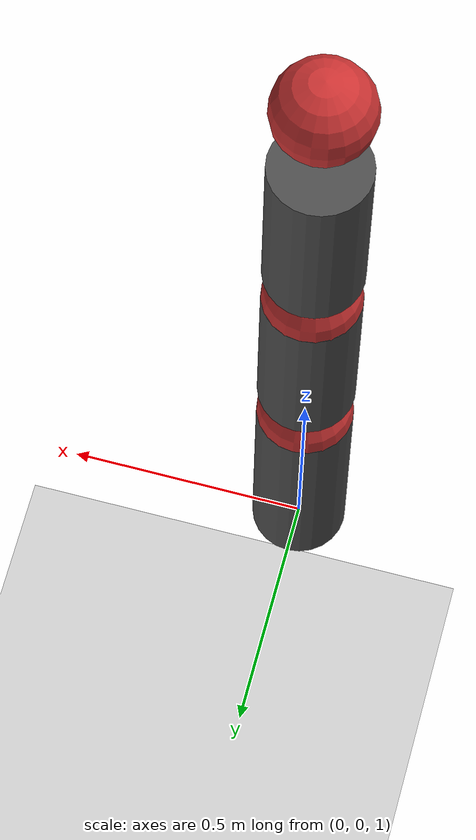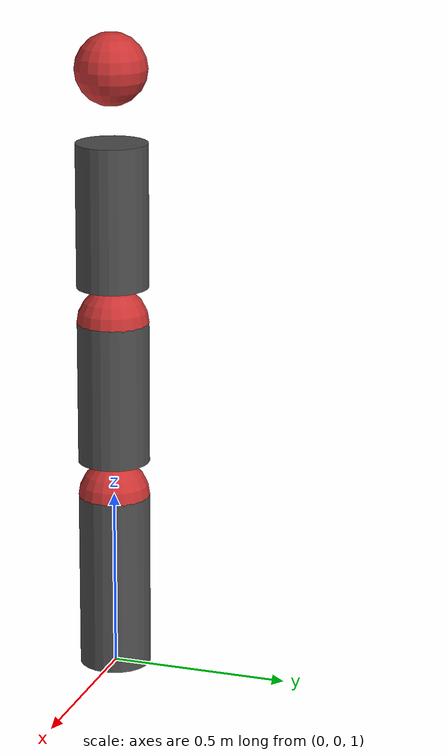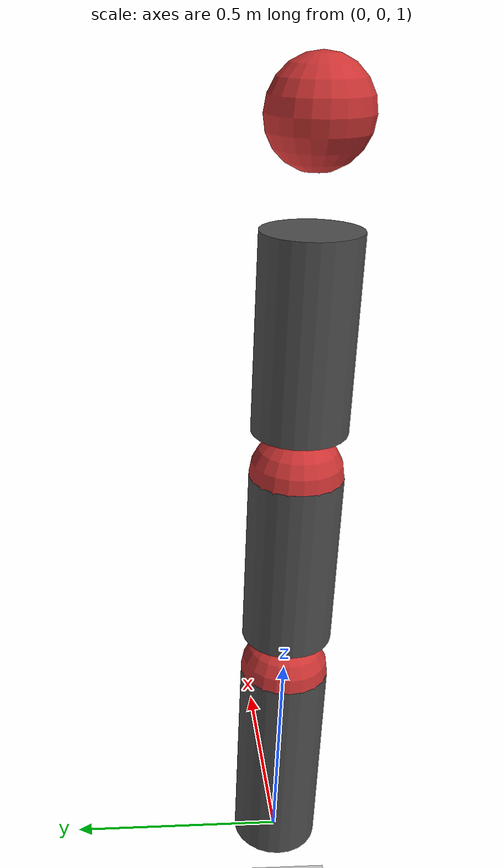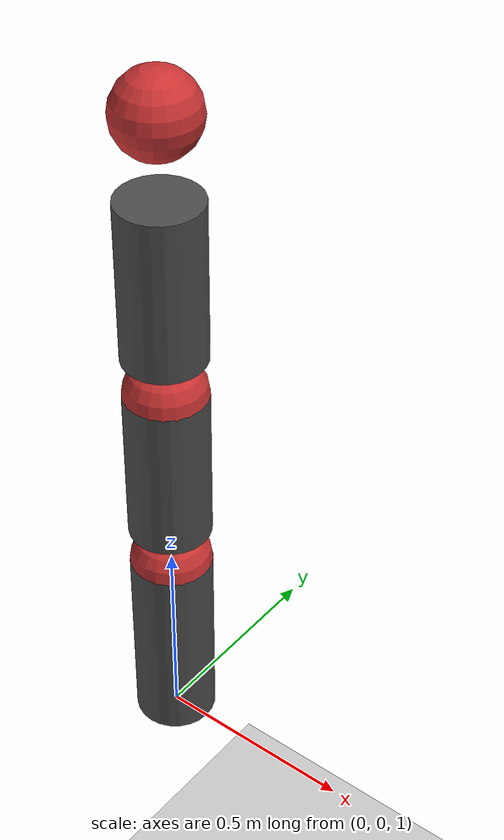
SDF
<sdf version='1.10'>
    <world name='arm_world'>
        <physics name='1ms' type='ignored'>
            <max_step_size>0.001</max_step_size>
            <real_time_factor>1</real_time_factor>
            <real_time_update_rate>1000</real_time_update_rate>
        </physics>
        <plugin name='gz::sim::systems::Physics' filename='gz-sim-physics-system' />
        <plugin name='gz::sim::systems::UserCommands' filename='gz-sim-user-commands-system' />
        <plugin name='gz::sim::systems::SceneBroadcaster' filename='gz-sim-scene-broadcaster-system' />
        <gravity>0 0 -9.8000000000000007</gravity>
        <scene>
            <ambient>0.4 0.4 0.4 1</ambient>
            <background>0.7 0.7 0.7 1</background>
        </scene>

        <!-- Ground Plane -->
        <model name='ground_plane'>
            <static>true</static>
            <link name='link'>
                <collision name='collision'>
                    <geometry>
                        <plane>
                            <normal>0 0 1</normal>
                            <size>100 100</size>
                        </plane>
                    </geometry>
                </collision>
                <visual name='visual'>
                    <geometry>
                        <plane>
                            <normal>0 0 1</normal>
                            <size>100 100</size>
                        </plane>
                    </geometry>
                    <material>
                        <ambient>0.8 0.8 0.8 1</ambient>
                    </material>
                </visual>
            </link>
        </model>

        <!-- Arm/Finger Base -->
        <model name='finger'>
            <pose>0 0 1 0 0 0</pose>

            <!-- Base Cylinder -->
            <link name='base_cylinder'>
                <visual name='visual'>
                    <geometry>
                        <cylinder>
                            <radius>0.1</radius>
                            <length>0.5</length>
                        </cylinder>
                    </geometry>
                    <material>
                        <ambient>0.3 0.3 0.3 1</ambient>
                    </material>
                </visual>
                <collision name='collision'>
                    <geometry>
                        <cylinder>
                            <radius>0.1</radius>
                            <length>0.5</length>
                        </cylinder>
                    </geometry>
                </collision>
                <pose>0 0 0.25 0 0 0</pose>
            </link>

            <!-- Base Sphere (Joint) -->
            <link name='base_joint'>
                <visual name='visual'>
                    <geometry>
                        <sphere>
                            <radius>0.1</radius>
                        </sphere>
                    </geometry>
                    <material>
                        <ambient>0.8 0.2 0.2 1</ambient>
                    </material>
                </visual>
                <collision name='collision'>
                    <geometry>
                        <sphere>
                            <radius>0.1</radius>
                        </sphere>
                    </geometry>
                </collision>
                <pose>0 0 0.5 0 0 0</pose>
            </link>

            <!-- First Joint -->

            <!-- First Finger Segment (Cylinder) -->
            <link name='finger_segment_1'>
                <visual name='visual'>
                    <geometry>
                        <cylinder>
                            <radius>0.1</radius>
                            <length>0.4</length>
                        </cylinder>
                    </geometry>
                    <material>
                        <ambient>0.3 0.3 0.3 1</ambient>
                    </material>
                </visual>
                <collision name='collision'>
                    <geometry>
                        <cylinder>
                            <radius>0.1</radius>
                            <length>0.4</length>
                        </cylinder>
                    </geometry>
                </collision>
                <pose>0 0 0.8 0 0 0</pose>
            </link>

            <!-- First Finger Joint (Knuckle) -->
            <link name='knuckle_joint'>
                <visual name='visual'>
                    <geometry>
                        <sphere>
                            <radius>0.1</radius>
                        </sphere>
                    </geometry>
                    <material>
                        <ambient>0.8 0.2 0.2 1</ambient>
                    </material>
                </visual>
                <collision name='collision'>
                    <geometry>
                        <sphere>
                            <radius>0.1</radius>
                        </sphere>
                    </geometry>
                </collision>
                <pose>0 0 1 0 0 0</pose>
            </link>

            <!-- Second Joint -->

            <!-- Second Finger Segment (Cylinder) -->
            <link name='finger_segment_2'>
                <visual name='visual'>
                    <geometry>
                        <cylinder>
                            <radius>0.1</radius>
                            <length>0.4</length>
                        </cylinder>
                    </geometry>
                    <material>
                        <ambient>0.3 0.3 0.3 1</ambient>
                    </material>
                </visual>
                <collision name='collision'>
                    <geometry>
                        <cylinder>
                            <radius>0.1</radius>
                            <length>0.4</length>
                        </cylinder>
                    </geometry>
                </collision>
                <pose>0 0 1.3 0 0 0</pose>
            </link>

            <!-- Second Finger Joint (Middle Joint) -->
            <link name='middle_joint'>
                <visual name='visual'>
                    <geometry>
                        <sphere>
                            <radius>0.1</radius>
                        </sphere>
                    </geometry>
                    <material>
                        <ambient>0.8 0.2 0.2 1</ambient>
                    </material>
                </visual>
                <collision name='collision'>
                    <geometry>
                        <sphere>
                            <radius>0.1</radius>
                        </sphere>
                    </geometry>
                </collision>
                <pose>0 0 1.7 0 0 0</pose>
            </link>

            <!-- Third Joint -->

        </model>
    </world>
</sdf>
